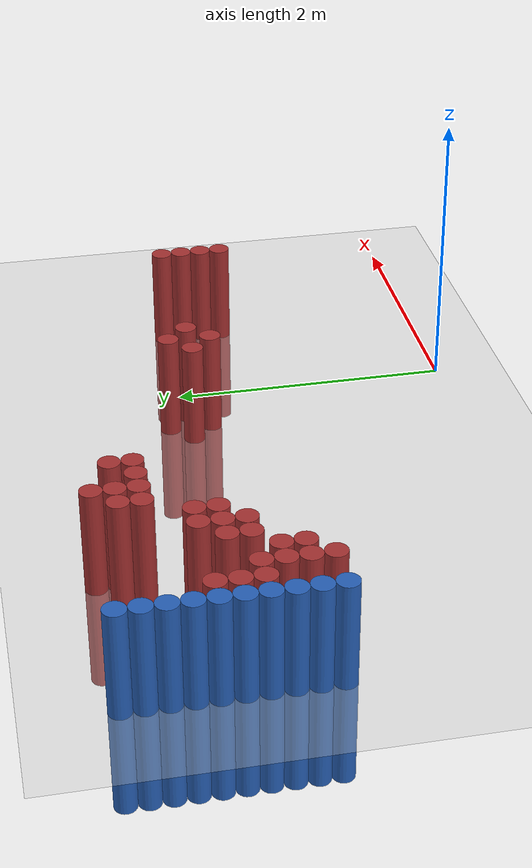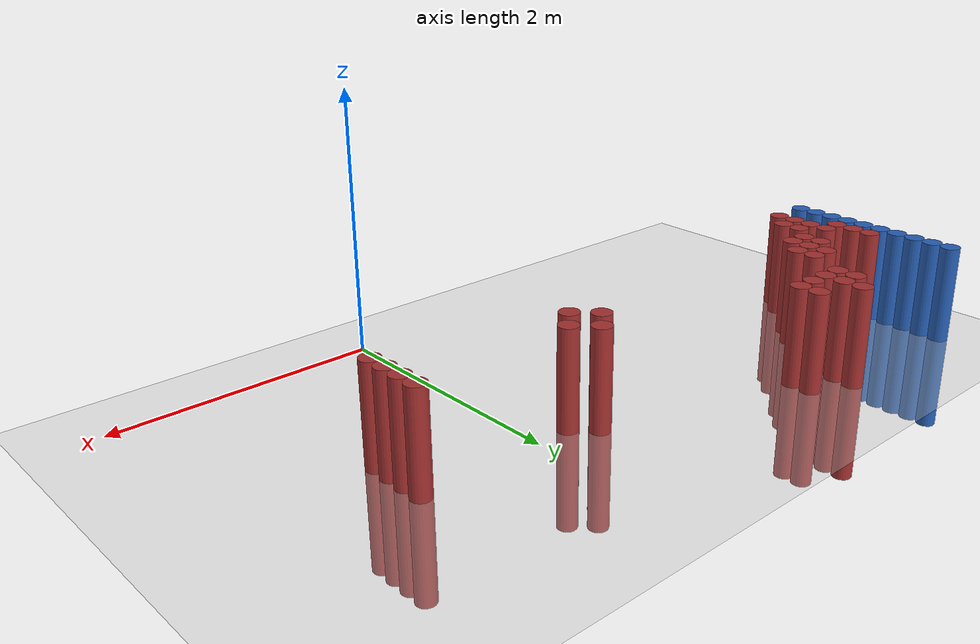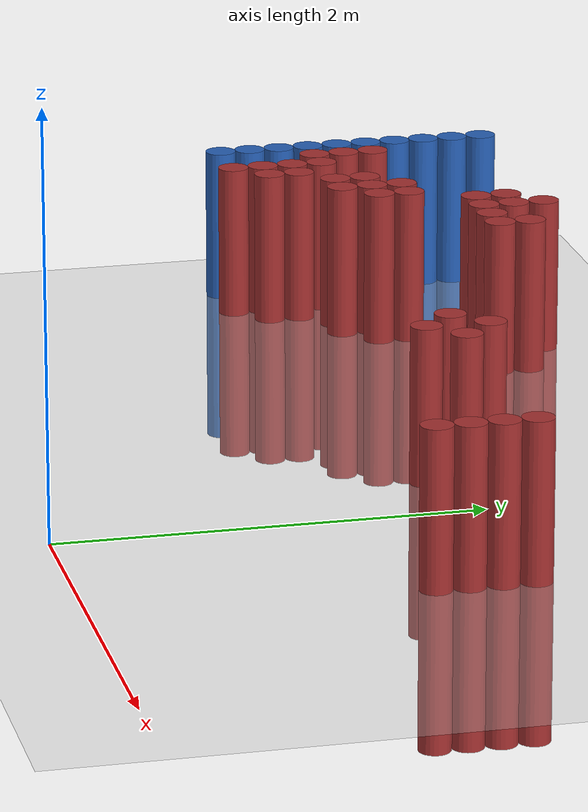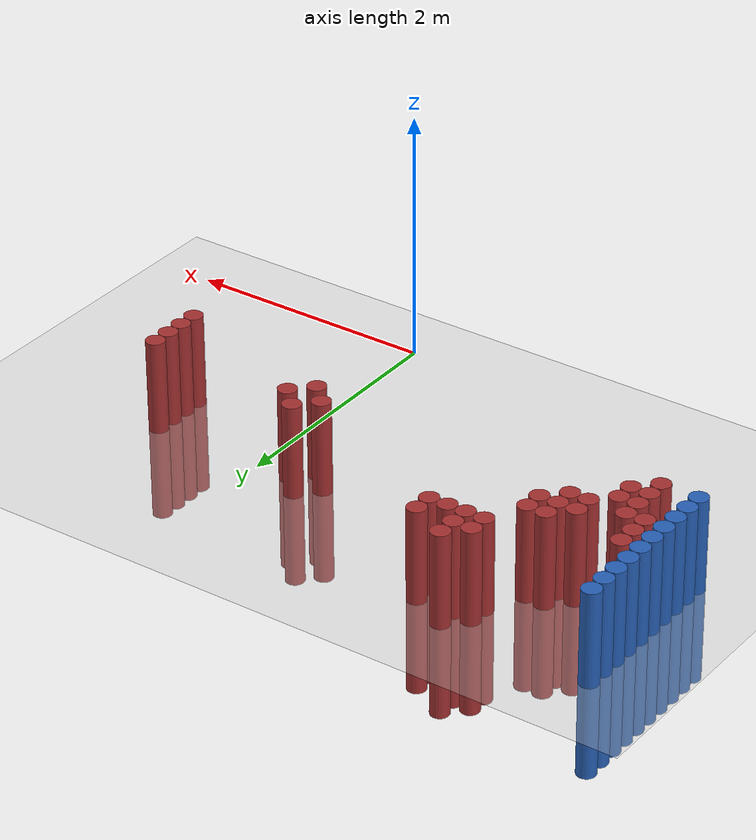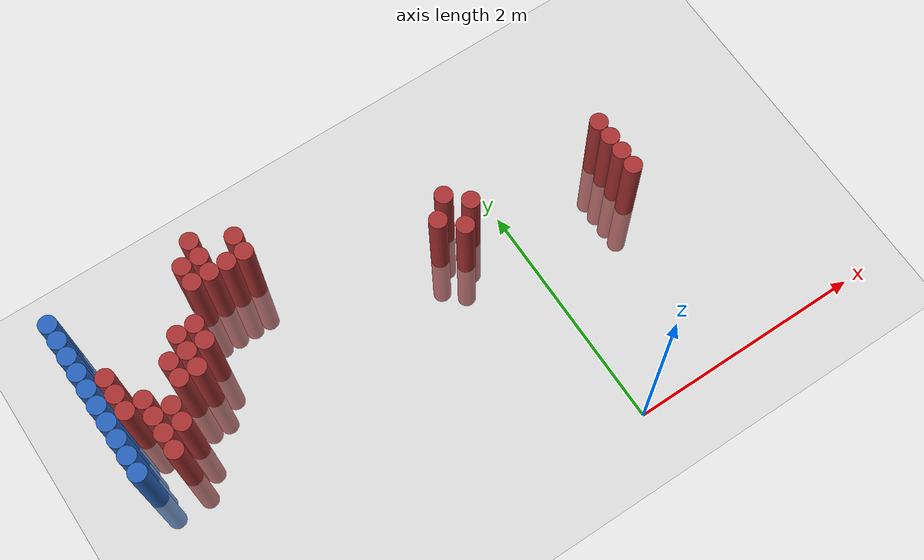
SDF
<sdf version="1.6">
 <world name="default">
  <model name="ground_plane">
   <static>1</static>
   <link name="link">
    <collision name="collision">
     <geometry><plane><normal>0 0 1</normal><size>100 100</size></plane></geometry>
     <surface><friction><ode><mu>100</mu><mu2>50</mu2></ode></friction></surface>
    </collision>
    <visual name="visual">
     <cast_shadows>0</cast_shadows>
     <geometry><plane><normal>0 0 1</normal><size>100 100</size></plane></geometry>
     <material>
      <script><uri>file://media/materials/scripts/gazebo.material</uri><name>Gazebo/Grey</name></script>
     </material>
    </visual>
   </link>
  </model>
  <model name="unit_cylinder_135">
   <static>1</static>
   <pose>-3.425000 1.525000 0.000000 0.000000 0.000000 0.000000</pose>
   <link name="link">
    <inertial>
     <mass>1</mass>
     <inertia><ixx>0.145833</ixx><ixy>0</ixy><ixz>0</ixz><iyy>0.145833</iyy><iyz>0</iyz><izz>0.125</izz></inertia>
    </inertial>
    <collision name="collision">
     <geometry><cylinder><radius>0.075000</radius><length>1.5</length></cylinder></geometry>
    </collision>
    <visual name="visual">
     <geometry><cylinder><radius>0.075000</radius><length>1.5</length></cylinder></geometry>
     <material>
      <ambient>0.152000 0.379000 0.720000 1</ambient>
      <diffuse>0.152000 0.379000 0.720000 1</diffuse>
     </material>
     <material>
      <script><name>Gazebo/Grey</name><uri>file://media/materials/scripts/gazebo.material</uri></script>
     </material>
    </visual>
   </link>
  </model>
  <model name="unit_cylinder_137">
   <static>1</static>
   <pose>-3.425000 1.675000 0.000000 0.000000 0.000000 0.000000</pose>
   <link name="link">
    <inertial>
     <mass>1</mass>
     <inertia><ixx>0.145833</ixx><ixy>0</ixy><ixz>0</ixz><iyy>0.145833</iyy><iyz>0</iyz><izz>0.125</izz></inertia>
    </inertial>
    <collision name="collision">
     <geometry><cylinder><radius>0.075000</radius><length>1.5</length></cylinder></geometry>
    </collision>
    <visual name="visual">
     <geometry><cylinder><radius>0.075000</radius><length>1.5</length></cylinder></geometry>
     <material>
      <ambient>0.152000 0.379000 0.720000 1</ambient>
      <diffuse>0.152000 0.379000 0.720000 1</diffuse>
     </material>
     <material>
      <script><name>Gazebo/Grey</name><uri>file://media/materials/scripts/gazebo.material</uri></script>
     </material>
    </visual>
   </link>
  </model>
  <model name="unit_cylinder_139">
   <static>1</static>
   <pose>-3.425000 1.825000 0.000000 0.000000 0.000000 0.000000</pose>
   <link name="link">
    <inertial>
     <mass>1</mass>
     <inertia><ixx>0.145833</ixx><ixy>0</ixy><ixz>0</ixz><iyy>0.145833</iyy><iyz>0</iyz><izz>0.125</izz></inertia>
    </inertial>
    <collision name="collision">
     <geometry><cylinder><radius>0.075000</radius><length>1.5</length></cylinder></geometry>
    </collision>
    <visual name="visual">
     <geometry><cylinder><radius>0.075000</radius><length>1.5</length></cylinder></geometry>
     <material>
      <ambient>0.152000 0.379000 0.720000 1</ambient>
      <diffuse>0.152000 0.379000 0.720000 1</diffuse>
     </material>
     <material>
      <script><name>Gazebo/Grey</name><uri>file://media/materials/scripts/gazebo.material</uri></script>
     </material>
    </visual>
   </link>
  </model>
  <model name="unit_cylinder_141">
   <static>1</static>
   <pose>-3.425000 1.975000 0.000000 0.000000 0.000000 0.000000</pose>
   <link name="link">
    <inertial>
     <mass>1</mass>
     <inertia><ixx>0.145833</ixx><ixy>0</ixy><ixz>0</ixz><iyy>0.145833</iyy><iyz>0</iyz><izz>0.125</izz></inertia>
    </inertial>
    <collision name="collision">
     <geometry><cylinder><radius>0.075000</radius><length>1.5</length></cylinder></geometry>
    </collision>
    <visual name="visual">
     <geometry><cylinder><radius>0.075000</radius><length>1.5</length></cylinder></geometry>
     <material>
      <ambient>0.152000 0.379000 0.720000 1</ambient>
      <diffuse>0.152000 0.379000 0.720000 1</diffuse>
     </material>
     <material>
      <script><name>Gazebo/Grey</name><uri>file://media/materials/scripts/gazebo.material</uri></script>
     </material>
    </visual>
   </link>
  </model>
  <model name="unit_cylinder_143">
   <static>1</static>
   <pose>-3.425000 2.125000 0.000000 0.000000 0.000000 0.000000</pose>
   <link name="link">
    <inertial>
     <mass>1</mass>
     <inertia><ixx>0.145833</ixx><ixy>0</ixy><ixz>0</ixz><iyy>0.145833</iyy><iyz>0</iyz><izz>0.125</izz></inertia>
    </inertial>
    <collision name="collision">
     <geometry><cylinder><radius>0.075000</radius><length>1.5</length></cylinder></geometry>
    </collision>
    <visual name="visual">
     <geometry><cylinder><radius>0.075000</radius><length>1.5</length></cylinder></geometry>
     <material>
      <ambient>0.152000 0.379000 0.720000 1</ambient>
      <diffuse>0.152000 0.379000 0.720000 1</diffuse>
     </material>
     <material>
      <script><name>Gazebo/Grey</name><uri>file://media/materials/scripts/gazebo.material</uri></script>
     </material>
    </visual>
   </link>
  </model>
  <model name="unit_cylinder_145">
   <static>1</static>
   <pose>-3.425000 2.275000 0.000000 0.000000 0.000000 0.000000</pose>
   <link name="link">
    <inertial>
     <mass>1</mass>
     <inertia><ixx>0.145833</ixx><ixy>0</ixy><ixz>0</ixz><iyy>0.145833</iyy><iyz>0</iyz><izz>0.125</izz></inertia>
    </inertial>
    <collision name="collision">
     <geometry><cylinder><radius>0.075000</radius><length>1.5</length></cylinder></geometry>
    </collision>
    <visual name="visual">
     <geometry><cylinder><radius>0.075000</radius><length>1.5</length></cylinder></geometry>
     <material>
      <ambient>0.152000 0.379000 0.720000 1</ambient>
      <diffuse>0.152000 0.379000 0.720000 1</diffuse>
     </material>
     <material>
      <script><name>Gazebo/Grey</name><uri>file://media/materials/scripts/gazebo.material</uri></script>
     </material>
    </visual>
   </link>
  </model>
  <model name="unit_cylinder_147">
   <static>1</static>
   <pose>-3.425000 2.425000 0.000000 0.000000 0.000000 0.000000</pose>
   <link name="link">
    <inertial>
     <mass>1</mass>
     <inertia><ixx>0.145833</ixx><ixy>0</ixy><ixz>0</ixz><iyy>0.145833</iyy><iyz>0</iyz><izz>0.125</izz></inertia>
    </inertial>
    <collision name="collision">
     <geometry><cylinder><radius>0.075000</radius><length>1.5</length></cylinder></geometry>
    </collision>
    <visual name="visual">
     <geometry><cylinder><radius>0.075000</radius><length>1.5</length></cylinder></geometry>
     <material>
      <ambient>0.152000 0.379000 0.720000 1</ambient>
      <diffuse>0.152000 0.379000 0.720000 1</diffuse>
     </material>
     <material>
      <script><name>Gazebo/Grey</name><uri>file://media/materials/scripts/gazebo.material</uri></script>
     </material>
    </visual>
   </link>
  </model>
  <model name="unit_cylinder_149">
   <static>1</static>
   <pose>-3.425000 2.575000 0.000000 0.000000 0.000000 0.000000</pose>
   <link name="link">
    <inertial>
     <mass>1</mass>
     <inertia><ixx>0.145833</ixx><ixy>0</ixy><ixz>0</ixz><iyy>0.145833</iyy><iyz>0</iyz><izz>0.125</izz></inertia>
    </inertial>
    <collision name="collision">
     <geometry><cylinder><radius>0.075000</radius><length>1.5</length></cylinder></geometry>
    </collision>
    <visual name="visual">
     <geometry><cylinder><radius>0.075000</radius><length>1.5</length></cylinder></geometry>
     <material>
      <ambient>0.152000 0.379000 0.720000 1</ambient>
      <diffuse>0.152000 0.379000 0.720000 1</diffuse>
     </material>
     <material>
      <script><name>Gazebo/Grey</name><uri>file://media/materials/scripts/gazebo.material</uri></script>
     </material>
    </visual>
   </link>
  </model>
  <model name="unit_cylinder_151">
   <static>1</static>
   <pose>-3.425000 2.725000 0.000000 0.000000 0.000000 0.000000</pose>
   <link name="link">
    <inertial>
     <mass>1</mass>
     <inertia><ixx>0.145833</ixx><ixy>0</ixy><ixz>0</ixz><iyy>0.145833</iyy><iyz>0</iyz><izz>0.125</izz></inertia>
    </inertial>
    <collision name="collision">
     <geometry><cylinder><radius>0.075000</radius><length>1.5</length></cylinder></geometry>
    </collision>
    <visual name="visual">
     <geometry><cylinder><radius>0.075000</radius><length>1.5</length></cylinder></geometry>
     <material>
      <ambient>0.152000 0.379000 0.720000 1</ambient>
      <diffuse>0.152000 0.379000 0.720000 1</diffuse>
     </material>
     <material>
      <script><name>Gazebo/Grey</name><uri>file://media/materials/scripts/gazebo.material</uri></script>
     </material>
    </visual>
   </link>
  </model>
  <model name="unit_cylinder_153">
   <static>1</static>
   <pose>-3.425000 2.875000 0.000000 0.000000 0.000000 0.000000</pose>
   <link name="link">
    <inertial>
     <mass>1</mass>
     <inertia><ixx>0.145833</ixx><ixy>0</ixy><ixz>0</ixz><iyy>0.145833</iyy><iyz>0</iyz><izz>0.125</izz></inertia>
    </inertial>
    <collision name="collision">
     <geometry><cylinder><radius>0.075000</radius><length>1.5</length></cylinder></geometry>
    </collision>
    <visual name="visual">
     <geometry><cylinder><radius>0.075000</radius><length>1.5</length></cylinder></geometry>
     <material>
      <ambient>0.152000 0.379000 0.720000 1</ambient>
      <diffuse>0.152000 0.379000 0.720000 1</diffuse>
     </material>
     <material>
      <script><name>Gazebo/Grey</name><uri>file://media/materials/scripts/gazebo.material</uri></script>
     </material>
    </visual>
   </link>
  </model>
  <model name="unit_cylinder_231">
   <static>1</static>
   <pose>-3.425000 1.525000 0.000000 0.000000 0.000000 0.000000</pose>
   <link name="link">
    <inertial>
     <mass>1</mass>
     <inertia><ixx>0.145833</ixx><ixy>0</ixy><ixz>0</ixz><iyy>0.145833</iyy><iyz>0</iyz><izz>0.125</izz></inertia>
    </inertial>
    <collision name="collision">
     <geometry><cylinder><radius>0.075000</radius><length>1.5</length></cylinder></geometry>
    </collision>
    <visual name="visual">
     <geometry><cylinder><radius>0.075000</radius><length>1.5</length></cylinder></geometry>
     <material>
      <ambient>0.152000 0.379000 0.720000 1</ambient>
      <diffuse>0.152000 0.379000 0.720000 1</diffuse>
     </material>
     <material>
      <script><name>Gazebo/Grey</name><uri>file://media/materials/scripts/gazebo.material</uri></script>
     </material>
    </visual>
   </link>
  </model>
  <model name="unit_cylinder_232">
   <static>1</static>
   <pose>-3.425000 1.675000 0.000000 0.000000 0.000000 0.000000</pose>
   <link name="link">
    <inertial>
     <mass>1</mass>
     <inertia><ixx>0.145833</ixx><ixy>0</ixy><ixz>0</ixz><iyy>0.145833</iyy><iyz>0</iyz><izz>0.125</izz></inertia>
    </inertial>
    <collision name="collision">
     <geometry><cylinder><radius>0.075000</radius><length>1.5</length></cylinder></geometry>
    </collision>
    <visual name="visual">
     <geometry><cylinder><radius>0.075000</radius><length>1.5</length></cylinder></geometry>
     <material>
      <ambient>0.152000 0.379000 0.720000 1</ambient>
      <diffuse>0.152000 0.379000 0.720000 1</diffuse>
     </material>
     <material>
      <script><name>Gazebo/Grey</name><uri>file://media/materials/scripts/gazebo.material</uri></script>
     </material>
    </visual>
   </link>
  </model>
  <model name="unit_cylinder_233">
   <static>1</static>
   <pose>-3.425000 1.825000 0.000000 0.000000 0.000000 0.000000</pose>
   <link name="link">
    <inertial>
     <mass>1</mass>
     <inertia><ixx>0.145833</ixx><ixy>0</ixy><ixz>0</ixz><iyy>0.145833</iyy><iyz>0</iyz><izz>0.125</izz></inertia>
    </inertial>
    <collision name="collision">
     <geometry><cylinder><radius>0.075000</radius><length>1.5</length></cylinder></geometry>
    </collision>
    <visual name="visual">
     <geometry><cylinder><radius>0.075000</radius><length>1.5</length></cylinder></geometry>
     <material>
      <ambient>0.152000 0.379000 0.720000 1</ambient>
      <diffuse>0.152000 0.379000 0.720000 1</diffuse>
     </material>
     <material>
      <script><name>Gazebo/Grey</name><uri>file://media/materials/scripts/gazebo.material</uri></script>
     </material>
    </visual>
   </link>
  </model>
  <model name="unit_cylinder_234">
   <static>1</static>
   <pose>-3.425000 1.975000 0.000000 0.000000 0.000000 0.000000</pose>
   <link name="link">
    <inertial>
     <mass>1</mass>
     <inertia><ixx>0.145833</ixx><ixy>0</ixy><ixz>0</ixz><iyy>0.145833</iyy><iyz>0</iyz><izz>0.125</izz></inertia>
    </inertial>
    <collision name="collision">
     <geometry><cylinder><radius>0.075000</radius><length>1.5</length></cylinder></geometry>
    </collision>
    <visual name="visual">
     <geometry><cylinder><radius>0.075000</radius><length>1.5</length></cylinder></geometry>
     <material>
      <ambient>0.152000 0.379000 0.720000 1</ambient>
      <diffuse>0.152000 0.379000 0.720000 1</diffuse>
     </material>
     <material>
      <script><name>Gazebo/Grey</name><uri>file://media/materials/scripts/gazebo.material</uri></script>
     </material>
    </visual>
   </link>
  </model>
  <model name="unit_cylinder_235">
   <static>1</static>
   <pose>-3.425000 2.125000 0.000000 0.000000 0.000000 0.000000</pose>
   <link name="link">
    <inertial>
     <mass>1</mass>
     <inertia><ixx>0.145833</ixx><ixy>0</ixy><ixz>0</ixz><iyy>0.145833</iyy><iyz>0</iyz><izz>0.125</izz></inertia>
    </inertial>
    <collision name="collision">
     <geometry><cylinder><radius>0.075000</radius><length>1.5</length></cylinder></geometry>
    </collision>
    <visual name="visual">
     <geometry><cylinder><radius>0.075000</radius><length>1.5</length></cylinder></geometry>
     <material>
      <ambient>0.152000 0.379000 0.720000 1</ambient>
      <diffuse>0.152000 0.379000 0.720000 1</diffuse>
     </material>
     <material>
      <script><name>Gazebo/Grey</name><uri>file://media/materials/scripts/gazebo.material</uri></script>
     </material>
    </visual>
   </link>
  </model>
  <model name="unit_cylinder_236">
   <static>1</static>
   <pose>-3.425000 2.275000 0.000000 0.000000 0.000000 0.000000</pose>
   <link name="link">
    <inertial>
     <mass>1</mass>
     <inertia><ixx>0.145833</ixx><ixy>0</ixy><ixz>0</ixz><iyy>0.145833</iyy><iyz>0</iyz><izz>0.125</izz></inertia>
    </inertial>
    <collision name="collision">
     <geometry><cylinder><radius>0.075000</radius><length>1.5</length></cylinder></geometry>
    </collision>
    <visual name="visual">
     <geometry><cylinder><radius>0.075000</radius><length>1.5</length></cylinder></geometry>
     <material>
      <ambient>0.152000 0.379000 0.720000 1</ambient>
      <diffuse>0.152000 0.379000 0.720000 1</diffuse>
     </material>
     <material>
      <script><name>Gazebo/Grey</name><uri>file://media/materials/scripts/gazebo.material</uri></script>
     </material>
    </visual>
   </link>
  </model>
  <model name="unit_cylinder_237">
   <static>1</static>
   <pose>-3.425000 2.425000 0.000000 0.000000 0.000000 0.000000</pose>
   <link name="link">
    <inertial>
     <mass>1</mass>
     <inertia><ixx>0.145833</ixx><ixy>0</ixy><ixz>0</ixz><iyy>0.145833</iyy><iyz>0</iyz><izz>0.125</izz></inertia>
    </inertial>
    <collision name="collision">
     <geometry><cylinder><radius>0.075000</radius><length>1.5</length></cylinder></geometry>
    </collision>
    <visual name="visual">
     <geometry><cylinder><radius>0.075000</radius><length>1.5</length></cylinder></geometry>
     <material>
      <ambient>0.152000 0.379000 0.720000 1</ambient>
      <diffuse>0.152000 0.379000 0.720000 1</diffuse>
     </material>
     <material>
      <script><name>Gazebo/Grey</name><uri>file://media/materials/scripts/gazebo.material</uri></script>
     </material>
    </visual>
   </link>
  </model>
  <model name="unit_cylinder_238">
   <static>1</static>
   <pose>-3.425000 2.575000 0.000000 0.000000 0.000000 0.000000</pose>
   <link name="link">
    <inertial>
     <mass>1</mass>
     <inertia><ixx>0.145833</ixx><ixy>0</ixy><ixz>0</ixz><iyy>0.145833</iyy><iyz>0</iyz><izz>0.125</izz></inertia>
    </inertial>
    <collision name="collision">
     <geometry><cylinder><radius>0.075000</radius><length>1.5</length></cylinder></geometry>
    </collision>
    <visual name="visual">
     <geometry><cylinder><radius>0.075000</radius><length>1.5</length></cylinder></geometry>
     <material>
      <ambient>0.152000 0.379000 0.720000 1</ambient>
      <diffuse>0.152000 0.379000 0.720000 1</diffuse>
     </material>
     <material>
      <script><name>Gazebo/Grey</name><uri>file://media/materials/scripts/gazebo.material</uri></script>
     </material>
    </visual>
   </link>
  </model>
  <model name="unit_cylinder_239">
   <static>1</static>
   <pose>-3.425000 2.725000 0.000000 0.000000 0.000000 0.000000</pose>
   <link name="link">
    <inertial>
     <mass>1</mass>
     <inertia><ixx>0.145833</ixx><ixy>0</ixy><ixz>0</ixz><iyy>0.145833</iyy><iyz>0</iyz><izz>0.125</izz></inertia>
    </inertial>
    <collision name="collision">
     <geometry><cylinder><radius>0.075000</radius><length>1.5</length></cylinder></geometry>
    </collision>
    <visual name="visual">
     <geometry><cylinder><radius>0.075000</radius><length>1.5</length></cylinder></geometry>
     <material>
      <ambient>0.152000 0.379000 0.720000 1</ambient>
      <diffuse>0.152000 0.379000 0.720000 1</diffuse>
     </material>
     <material>
      <script><name>Gazebo/Grey</name><uri>file://media/materials/scripts/gazebo.material</uri></script>
     </material>
    </visual>
   </link>
  </model>
  <model name="unit_cylinder_240">
   <static>1</static>
   <pose>-3.425000 2.875000 0.000000 0.000000 0.000000 0.000000</pose>
   <link name="link">
    <inertial>
     <mass>1</mass>
     <inertia><ixx>0.145833</ixx><ixy>0</ixy><ixz>0</ixz><iyy>0.145833</iyy><iyz>0</iyz><izz>0.125</izz></inertia>
    </inertial>
    <collision name="collision">
     <geometry><cylinder><radius>0.075000</radius><length>1.5</length></cylinder></geometry>
    </collision>
    <visual name="visual">
     <geometry><cylinder><radius>0.075000</radius><length>1.5</length></cylinder></geometry>
     <material>
      <ambient>0.152000 0.379000 0.720000 1</ambient>
      <diffuse>0.152000 0.379000 0.720000 1</diffuse>
     </material>
     <material>
      <script><name>Gazebo/Grey</name><uri>file://media/materials/scripts/gazebo.material</uri></script>
     </material>
    </visual>
   </link>
  </model>
  <model name="unit_cylinder_274">
   <static>1</static>
   <pose>-3.275000 1.975000 0.000000 0.000000 0.000000 0.000000</pose>
   <link name="link">
    <inertial>
     <mass>1</mass>
     <inertia><ixx>0.145833</ixx><ixy>0</ixy><ixz>0</ixz><iyy>0.145833</iyy><iyz>0</iyz><izz>0.125</izz></inertia>
    </inertial>
    <collision name="collision">
     <geometry><cylinder><radius>0.075000</radius><length>1.5</length></cylinder></geometry>
    </collision>
    <visual name="visual">
     <geometry><cylinder><radius>0.075000</radius><length>1.5</length></cylinder></geometry>
     <material>
      <ambient>0.648000 0.192000 0.192000 1</ambient>
      <diffuse>0.648000 0.192000 0.192000 1</diffuse>
     </material>
     <material>
      <script><name>Gazebo/Grey</name><uri>file://media/materials/scripts/gazebo.material</uri></script>
     </material>
    </visual>
   </link>
  </model>
  <model name="unit_cylinder_275">
   <static>1</static>
   <pose>-3.275000 2.125000 0.000000 0.000000 0.000000 0.000000</pose>
   <link name="link">
    <inertial>
     <mass>1</mass>
     <inertia><ixx>0.145833</ixx><ixy>0</ixy><ixz>0</ixz><iyy>0.145833</iyy><iyz>0</iyz><izz>0.125</izz></inertia>
    </inertial>
    <collision name="collision">
     <geometry><cylinder><radius>0.075000</radius><length>1.5</length></cylinder></geometry>
    </collision>
    <visual name="visual">
     <geometry><cylinder><radius>0.075000</radius><length>1.5</length></cylinder></geometry>
     <material>
      <ambient>0.648000 0.192000 0.192000 1</ambient>
      <diffuse>0.648000 0.192000 0.192000 1</diffuse>
     </material>
     <material>
      <script><name>Gazebo/Grey</name><uri>file://media/materials/scripts/gazebo.material</uri></script>
     </material>
    </visual>
   </link>
  </model>
  <model name="unit_cylinder_276">
   <static>1</static>
   <pose>-3.275000 2.275000 0.000000 0.000000 0.000000 0.000000</pose>
   <link name="link">
    <inertial>
     <mass>1</mass>
     <inertia><ixx>0.145833</ixx><ixy>0</ixy><ixz>0</ixz><iyy>0.145833</iyy><iyz>0</iyz><izz>0.125</izz></inertia>
    </inertial>
    <collision name="collision">
     <geometry><cylinder><radius>0.075000</radius><length>1.5</length></cylinder></geometry>
    </collision>
    <visual name="visual">
     <geometry><cylinder><radius>0.075000</radius><length>1.5</length></cylinder></geometry>
     <material>
      <ambient>0.648000 0.192000 0.192000 1</ambient>
      <diffuse>0.648000 0.192000 0.192000 1</diffuse>
     </material>
     <material>
      <script><name>Gazebo/Grey</name><uri>file://media/materials/scripts/gazebo.material</uri></script>
     </material>
    </visual>
   </link>
  </model>
  <model name="unit_cylinder_287">
   <static>1</static>
   <pose>-3.125000 1.525000 0.000000 0.000000 0.000000 0.000000</pose>
   <link name="link">
    <inertial>
     <mass>1</mass>
     <inertia><ixx>0.145833</ixx><ixy>0</ixy><ixz>0</ixz><iyy>0.145833</iyy><iyz>0</iyz><izz>0.125</izz></inertia>
    </inertial>
    <collision name="collision">
     <geometry><cylinder><radius>0.075000</radius><length>1.5</length></cylinder></geometry>
    </collision>
    <visual name="visual">
     <geometry><cylinder><radius>0.075000</radius><length>1.5</length></cylinder></geometry>
     <material>
      <ambient>0.648000 0.192000 0.192000 1</ambient>
      <diffuse>0.648000 0.192000 0.192000 1</diffuse>
     </material>
     <material>
      <script><name>Gazebo/Grey</name><uri>file://media/materials/scripts/gazebo.material</uri></script>
     </material>
    </visual>
   </link>
  </model>
  <model name="unit_cylinder_288">
   <static>1</static>
   <pose>-3.125000 1.675000 0.000000 0.000000 0.000000 0.000000</pose>
   <link name="link">
    <inertial>
     <mass>1</mass>
     <inertia><ixx>0.145833</ixx><ixy>0</ixy><ixz>0</ixz><iyy>0.145833</iyy><iyz>0</iyz><izz>0.125</izz></inertia>
    </inertial>
    <collision name="collision">
     <geometry><cylinder><radius>0.075000</radius><length>1.5</length></cylinder></geometry>
    </collision>
    <visual name="visual">
     <geometry><cylinder><radius>0.075000</radius><length>1.5</length></cylinder></geometry>
     <material>
      <ambient>0.648000 0.192000 0.192000 1</ambient>
      <diffuse>0.648000 0.192000 0.192000 1</diffuse>
     </material>
     <material>
      <script><name>Gazebo/Grey</name><uri>file://media/materials/scripts/gazebo.material</uri></script>
     </material>
    </visual>
   </link>
  </model>
  <model name="unit_cylinder_289">
   <static>1</static>
   <pose>-3.125000 1.825000 0.000000 0.000000 0.000000 0.000000</pose>
   <link name="link">
    <inertial>
     <mass>1</mass>
     <inertia><ixx>0.145833</ixx><ixy>0</ixy><ixz>0</ixz><iyy>0.145833</iyy><iyz>0</iyz><izz>0.125</izz></inertia>
    </inertial>
    <collision name="collision">
     <geometry><cylinder><radius>0.075000</radius><length>1.5</length></cylinder></geometry>
    </collision>
    <visual name="visual">
     <geometry><cylinder><radius>0.075000</radius><length>1.5</length></cylinder></geometry>
     <material>
      <ambient>0.648000 0.192000 0.192000 1</ambient>
      <diffuse>0.648000 0.192000 0.192000 1</diffuse>
     </material>
     <material>
      <script><name>Gazebo/Grey</name><uri>file://media/materials/scripts/gazebo.material</uri></script>
     </material>
    </visual>
   </link>
  </model>
  <model name="unit_cylinder_290">
   <static>1</static>
   <pose>-3.125000 1.975000 0.000000 0.000000 0.000000 0.000000</pose>
   <link name="link">
    <inertial>
     <mass>1</mass>
     <inertia><ixx>0.145833</ixx><ixy>0</ixy><ixz>0</ixz><iyy>0.145833</iyy><iyz>0</iyz><izz>0.125</izz></inertia>
    </inertial>
    <collision name="collision">
     <geometry><cylinder><radius>0.075000</radius><length>1.5</length></cylinder></geometry>
    </collision>
    <visual name="visual">
     <geometry><cylinder><radius>0.075000</radius><length>1.5</length></cylinder></geometry>
     <material>
      <ambient>0.648000 0.192000 0.192000 1</ambient>
      <diffuse>0.648000 0.192000 0.192000 1</diffuse>
     </material>
     <material>
      <script><name>Gazebo/Grey</name><uri>file://media/materials/scripts/gazebo.material</uri></script>
     </material>
    </visual>
   </link>
  </model>
  <model name="unit_cylinder_296">
   <static>1</static>
   <pose>-2.975000 1.675000 0.000000 0.000000 0.000000 0.000000</pose>
   <link name="link">
    <inertial>
     <mass>1</mass>
     <inertia><ixx>0.145833</ixx><ixy>0</ixy><ixz>0</ixz><iyy>0.145833</iyy><iyz>0</iyz><izz>0.125</izz></inertia>
    </inertial>
    <collision name="collision">
     <geometry><cylinder><radius>0.075000</radius><length>1.5</length></cylinder></geometry>
    </collision>
    <visual name="visual">
     <geometry><cylinder><radius>0.075000</radius><length>1.5</length></cylinder></geometry>
     <material>
      <ambient>0.648000 0.192000 0.192000 1</ambient>
      <diffuse>0.648000 0.192000 0.192000 1</diffuse>
     </material>
     <material>
      <script><name>Gazebo/Grey</name><uri>file://media/materials/scripts/gazebo.material</uri></script>
     </material>
    </visual>
   </link>
  </model>
  <model name="unit_cylinder_297">
   <static>1</static>
   <pose>-2.975000 1.825000 0.000000 0.000000 0.000000 0.000000</pose>
   <link name="link">
    <inertial>
     <mass>1</mass>
     <inertia><ixx>0.145833</ixx><ixy>0</ixy><ixz>0</ixz><iyy>0.145833</iyy><iyz>0</iyz><izz>0.125</izz></inertia>
    </inertial>
    <collision name="collision">
     <geometry><cylinder><radius>0.075000</radius><length>1.5</length></cylinder></geometry>
    </collision>
    <visual name="visual">
     <geometry><cylinder><radius>0.075000</radius><length>1.5</length></cylinder></geometry>
     <material>
      <ambient>0.648000 0.192000 0.192000 1</ambient>
      <diffuse>0.648000 0.192000 0.192000 1</diffuse>
     </material>
     <material>
      <script><name>Gazebo/Grey</name><uri>file://media/materials/scripts/gazebo.material</uri></script>
     </material>
    </visual>
   </link>
  </model>
  <model name="unit_cylinder_301">
   <static>1</static>
   <pose>-2.825000 1.975000 0.000000 0.000000 0.000000 0.000000</pose>
   <link name="link">
    <inertial>
     <mass>1</mass>
     <inertia><ixx>0.145833</ixx><ixy>0</ixy><ixz>0</ixz><iyy>0.145833</iyy><iyz>0</iyz><izz>0.125</izz></inertia>
    </inertial>
    <collision name="collision">
     <geometry><cylinder><radius>0.075000</radius><length>1.5</length></cylinder></geometry>
    </collision>
    <visual name="visual">
     <geometry><cylinder><radius>0.075000</radius><length>1.5</length></cylinder></geometry>
     <material>
      <ambient>0.648000 0.192000 0.192000 1</ambient>
      <diffuse>0.648000 0.192000 0.192000 1</diffuse>
     </material>
     <material>
      <script><name>Gazebo/Grey</name><uri>file://media/materials/scripts/gazebo.material</uri></script>
     </material>
    </visual>
   </link>
  </model>
  <model name="unit_cylinder_302">
   <static>1</static>
   <pose>-2.825000 2.125000 0.000000 0.000000 0.000000 0.000000</pose>
   <link name="link">
    <inertial>
     <mass>1</mass>
     <inertia><ixx>0.145833</ixx><ixy>0</ixy><ixz>0</ixz><iyy>0.145833</iyy><iyz>0</iyz><izz>0.125</izz></inertia>
    </inertial>
    <collision name="collision">
     <geometry><cylinder><radius>0.075000</radius><length>1.5</length></cylinder></geometry>
    </collision>
    <visual name="visual">
     <geometry><cylinder><radius>0.075000</radius><length>1.5</length></cylinder></geometry>
     <material>
      <ambient>0.648000 0.192000 0.192000 1</ambient>
      <diffuse>0.648000 0.192000 0.192000 1</diffuse>
     </material>
     <material>
      <script><name>Gazebo/Grey</name><uri>file://media/materials/scripts/gazebo.material</uri></script>
     </material>
    </visual>
   </link>
  </model>
  <model name="unit_cylinder_303">
   <static>1</static>
   <pose>-2.675000 1.975000 0.000000 0.000000 0.000000 0.000000</pose>
   <link name="link">
    <inertial>
     <mass>1</mass>
     <inertia><ixx>0.145833</ixx><ixy>0</ixy><ixz>0</ixz><iyy>0.145833</iyy><iyz>0</iyz><izz>0.125</izz></inertia>
    </inertial>
    <collision name="collision">
     <geometry><cylinder><radius>0.075000</radius><length>1.5</length></cylinder></geometry>
    </collision>
    <visual name="visual">
     <geometry><cylinder><radius>0.075000</radius><length>1.5</length></cylinder></geometry>
     <material>
      <ambient>0.648000 0.192000 0.192000 1</ambient>
      <diffuse>0.648000 0.192000 0.192000 1</diffuse>
     </material>
     <material>
      <script><name>Gazebo/Grey</name><uri>file://media/materials/scripts/gazebo.material</uri></script>
     </material>
    </visual>
   </link>
  </model>
  <model name="unit_cylinder_304">
   <static>1</static>
   <pose>-2.675000 2.125000 0.000000 0.000000 0.000000 0.000000</pose>
   <link name="link">
    <inertial>
     <mass>1</mass>
     <inertia><ixx>0.145833</ixx><ixy>0</ixy><ixz>0</ixz><iyy>0.145833</iyy><iyz>0</iyz><izz>0.125</izz></inertia>
    </inertial>
    <collision name="collision">
     <geometry><cylinder><radius>0.075000</radius><length>1.5</length></cylinder></geometry>
    </collision>
    <visual name="visual">
     <geometry><cylinder><radius>0.075000</radius><length>1.5</length></cylinder></geometry>
     <material>
      <ambient>0.648000 0.192000 0.192000 1</ambient>
      <diffuse>0.648000 0.192000 0.192000 1</diffuse>
     </material>
     <material>
      <script><name>Gazebo/Grey</name><uri>file://media/materials/scripts/gazebo.material</uri></script>
     </material>
    </visual>
   </link>
  </model>
  <model name="unit_cylinder_305">
   <static>1</static>
   <pose>-2.675000 2.275000 0.000000 0.000000 0.000000 0.000000</pose>
   <link name="link">
    <inertial>
     <mass>1</mass>
     <inertia><ixx>0.145833</ixx><ixy>0</ixy><ixz>0</ixz><iyy>0.145833</iyy><iyz>0</iyz><izz>0.125</izz></inertia>
    </inertial>
    <collision name="collision">
     <geometry><cylinder><radius>0.075000</radius><length>1.5</length></cylinder></geometry>
    </collision>
    <visual name="visual">
     <geometry><cylinder><radius>0.075000</radius><length>1.5</length></cylinder></geometry>
     <material>
      <ambient>0.648000 0.192000 0.192000 1</ambient>
      <diffuse>0.648000 0.192000 0.192000 1</diffuse>
     </material>
     <material>
      <script><name>Gazebo/Grey</name><uri>file://media/materials/scripts/gazebo.material</uri></script>
     </material>
    </visual>
   </link>
  </model>
  <model name="unit_cylinder_306">
   <static>1</static>
   <pose>-2.525000 2.125000 0.000000 0.000000 0.000000 0.000000</pose>
   <link name="link">
    <inertial>
     <mass>1</mass>
     <inertia><ixx>0.145833</ixx><ixy>0</ixy><ixz>0</ixz><iyy>0.145833</iyy><iyz>0</iyz><izz>0.125</izz></inertia>
    </inertial>
    <collision name="collision">
     <geometry><cylinder><radius>0.075000</radius><length>1.5</length></cylinder></geometry>
    </collision>
    <visual name="visual">
     <geometry><cylinder><radius>0.075000</radius><length>1.5</length></cylinder></geometry>
     <material>
      <ambient>0.648000 0.192000 0.192000 1</ambient>
      <diffuse>0.648000 0.192000 0.192000 1</diffuse>
     </material>
     <material>
      <script><name>Gazebo/Grey</name><uri>file://media/materials/scripts/gazebo.material</uri></script>
     </material>
    </visual>
   </link>
  </model>
  <model name="unit_cylinder_307">
   <static>1</static>
   <pose>-2.525000 2.275000 0.000000 0.000000 0.000000 0.000000</pose>
   <link name="link">
    <inertial>
     <mass>1</mass>
     <inertia><ixx>0.145833</ixx><ixy>0</ixy><ixz>0</ixz><iyy>0.145833</iyy><iyz>0</iyz><izz>0.125</izz></inertia>
    </inertial>
    <collision name="collision">
     <geometry><cylinder><radius>0.075000</radius><length>1.5</length></cylinder></geometry>
    </collision>
    <visual name="visual">
     <geometry><cylinder><radius>0.075000</radius><length>1.5</length></cylinder></geometry>
     <material>
      <ambient>0.648000 0.192000 0.192000 1</ambient>
      <diffuse>0.648000 0.192000 0.192000 1</diffuse>
     </material>
     <material>
      <script><name>Gazebo/Grey</name><uri>file://media/materials/scripts/gazebo.material</uri></script>
     </material>
    </visual>
   </link>
  </model>
  <model name="unit_cylinder_310">
   <static>1</static>
   <pose>-2.375000 2.575000 0.000000 0.000000 0.000000 0.000000</pose>
   <link name="link">
    <inertial>
     <mass>1</mass>
     <inertia><ixx>0.145833</ixx><ixy>0</ixy><ixz>0</ixz><iyy>0.145833</iyy><iyz>0</iyz><izz>0.125</izz></inertia>
    </inertial>
    <collision name="collision">
     <geometry><cylinder><radius>0.075000</radius><length>1.5</length></cylinder></geometry>
    </collision>
    <visual name="visual">
     <geometry><cylinder><radius>0.075000</radius><length>1.5</length></cylinder></geometry>
     <material>
      <ambient>0.648000 0.192000 0.192000 1</ambient>
      <diffuse>0.648000 0.192000 0.192000 1</diffuse>
     </material>
     <material>
      <script><name>Gazebo/Grey</name><uri>file://media/materials/scripts/gazebo.material</uri></script>
     </material>
    </visual>
   </link>
  </model>
  <model name="unit_cylinder_311">
   <static>1</static>
   <pose>-2.375000 2.725000 0.000000 0.000000 0.000000 0.000000</pose>
   <link name="link">
    <inertial>
     <mass>1</mass>
     <inertia><ixx>0.145833</ixx><ixy>0</ixy><ixz>0</ixz><iyy>0.145833</iyy><iyz>0</iyz><izz>0.125</izz></inertia>
    </inertial>
    <collision name="collision">
     <geometry><cylinder><radius>0.075000</radius><length>1.5</length></cylinder></geometry>
    </collision>
    <visual name="visual">
     <geometry><cylinder><radius>0.075000</radius><length>1.5</length></cylinder></geometry>
     <material>
      <ambient>0.648000 0.192000 0.192000 1</ambient>
      <diffuse>0.648000 0.192000 0.192000 1</diffuse>
     </material>
     <material>
      <script><name>Gazebo/Grey</name><uri>file://media/materials/scripts/gazebo.material</uri></script>
     </material>
    </visual>
   </link>
  </model>
  <model name="unit_cylinder_320">
   <static>1</static>
   <pose>-2.225000 2.575000 0.000000 0.000000 0.000000 0.000000</pose>
   <link name="link">
    <inertial>
     <mass>1</mass>
     <inertia><ixx>0.145833</ixx><ixy>0</ixy><ixz>0</ixz><iyy>0.145833</iyy><iyz>0</iyz><izz>0.125</izz></inertia>
    </inertial>
    <collision name="collision">
     <geometry><cylinder><radius>0.075000</radius><length>1.5</length></cylinder></geometry>
    </collision>
    <visual name="visual">
     <geometry><cylinder><radius>0.075000</radius><length>1.5</length></cylinder></geometry>
     <material>
      <ambient>0.648000 0.192000 0.192000 1</ambient>
      <diffuse>0.648000 0.192000 0.192000 1</diffuse>
     </material>
     <material>
      <script><name>Gazebo/Grey</name><uri>file://media/materials/scripts/gazebo.material</uri></script>
     </material>
    </visual>
   </link>
  </model>
  <model name="unit_cylinder_321">
   <static>1</static>
   <pose>-2.225000 2.725000 0.000000 0.000000 0.000000 0.000000</pose>
   <link name="link">
    <inertial>
     <mass>1</mass>
     <inertia><ixx>0.145833</ixx><ixy>0</ixy><ixz>0</ixz><iyy>0.145833</iyy><iyz>0</iyz><izz>0.125</izz></inertia>
    </inertial>
    <collision name="collision">
     <geometry><cylinder><radius>0.075000</radius><length>1.5</length></cylinder></geometry>
    </collision>
    <visual name="visual">
     <geometry><cylinder><radius>0.075000</radius><length>1.5</length></cylinder></geometry>
     <material>
      <ambient>0.648000 0.192000 0.192000 1</ambient>
      <diffuse>0.648000 0.192000 0.192000 1</diffuse>
     </material>
     <material>
      <script><name>Gazebo/Grey</name><uri>file://media/materials/scripts/gazebo.material</uri></script>
     </material>
    </visual>
   </link>
  </model>
  <model name="unit_cylinder_322">
   <static>1</static>
   <pose>-2.225000 2.875000 0.000000 0.000000 0.000000 0.000000</pose>
   <link name="link">
    <inertial>
     <mass>1</mass>
     <inertia><ixx>0.145833</ixx><ixy>0</ixy><ixz>0</ixz><iyy>0.145833</iyy><iyz>0</iyz><izz>0.125</izz></inertia>
    </inertial>
    <collision name="collision">
     <geometry><cylinder><radius>0.075000</radius><length>1.5</length></cylinder></geometry>
    </collision>
    <visual name="visual">
     <geometry><cylinder><radius>0.075000</radius><length>1.5</length></cylinder></geometry>
     <material>
      <ambient>0.648000 0.192000 0.192000 1</ambient>
      <diffuse>0.648000 0.192000 0.192000 1</diffuse>
     </material>
     <material>
      <script><name>Gazebo/Grey</name><uri>file://media/materials/scripts/gazebo.material</uri></script>
     </material>
    </visual>
   </link>
  </model>
  <model name="unit_cylinder_327">
   <static>1</static>
   <pose>-2.075000 2.575000 0.000000 0.000000 0.000000 0.000000</pose>
   <link name="link">
    <inertial>
     <mass>1</mass>
     <inertia><ixx>0.145833</ixx><ixy>0</ixy><ixz>0</ixz><iyy>0.145833</iyy><iyz>0</iyz><izz>0.125</izz></inertia>
    </inertial>
    <collision name="collision">
     <geometry><cylinder><radius>0.075000</radius><length>1.5</length></cylinder></geometry>
    </collision>
    <visual name="visual">
     <geometry><cylinder><radius>0.075000</radius><length>1.5</length></cylinder></geometry>
     <material>
      <ambient>0.648000 0.192000 0.192000 1</ambient>
      <diffuse>0.648000 0.192000 0.192000 1</diffuse>
     </material>
     <material>
      <script><name>Gazebo/Grey</name><uri>file://media/materials/scripts/gazebo.material</uri></script>
     </material>
    </visual>
   </link>
  </model>
  <model name="unit_cylinder_336">
   <static>1</static>
   <pose>-1.925000 2.575000 0.000000 0.000000 0.000000 0.000000</pose>
   <link name="link">
    <inertial>
     <mass>1</mass>
     <inertia><ixx>0.145833</ixx><ixy>0</ixy><ixz>0</ixz><iyy>0.145833</iyy><iyz>0</iyz><izz>0.125</izz></inertia>
    </inertial>
    <collision name="collision">
     <geometry><cylinder><radius>0.075000</radius><length>1.5</length></cylinder></geometry>
    </collision>
    <visual name="visual">
     <geometry><cylinder><radius>0.075000</radius><length>1.5</length></cylinder></geometry>
     <material>
      <ambient>0.648000 0.192000 0.192000 1</ambient>
      <diffuse>0.648000 0.192000 0.192000 1</diffuse>
     </material>
     <material>
      <script><name>Gazebo/Grey</name><uri>file://media/materials/scripts/gazebo.material</uri></script>
     </material>
    </visual>
   </link>
  </model>
  <model name="unit_cylinder_337">
   <static>1</static>
   <pose>-1.925000 2.725000 0.000000 0.000000 0.000000 0.000000</pose>
   <link name="link">
    <inertial>
     <mass>1</mass>
     <inertia><ixx>0.145833</ixx><ixy>0</ixy><ixz>0</ixz><iyy>0.145833</iyy><iyz>0</iyz><izz>0.125</izz></inertia>
    </inertial>
    <collision name="collision">
     <geometry><cylinder><radius>0.075000</radius><length>1.5</length></cylinder></geometry>
    </collision>
    <visual name="visual">
     <geometry><cylinder><radius>0.075000</radius><length>1.5</length></cylinder></geometry>
     <material>
      <ambient>0.648000 0.192000 0.192000 1</ambient>
      <diffuse>0.648000 0.192000 0.192000 1</diffuse>
     </material>
     <material>
      <script><name>Gazebo/Grey</name><uri>file://media/materials/scripts/gazebo.material</uri></script>
     </material>
    </visual>
   </link>
  </model>
  <model name="unit_cylinder_382">
   <static>1</static>
   <pose>-0.575000 1.975000 0.000000 0.000000 0.000000 0.000000</pose>
   <link name="link">
    <inertial>
     <mass>1</mass>
     <inertia><ixx>0.145833</ixx><ixy>0</ixy><ixz>0</ixz><iyy>0.145833</iyy><iyz>0</iyz><izz>0.125</izz></inertia>
    </inertial>
    <collision name="collision">
     <geometry><cylinder><radius>0.075000</radius><length>1.5</length></cylinder></geometry>
    </collision>
    <visual name="visual">
     <geometry><cylinder><radius>0.075000</radius><length>1.5</length></cylinder></geometry>
     <material>
      <ambient>0.648000 0.192000 0.192000 1</ambient>
      <diffuse>0.648000 0.192000 0.192000 1</diffuse>
     </material>
     <material>
      <script><name>Gazebo/Grey</name><uri>file://media/materials/scripts/gazebo.material</uri></script>
     </material>
    </visual>
   </link>
  </model>
  <model name="unit_cylinder_385">
   <static>1</static>
   <pose>-0.425000 1.825000 0.000000 0.000000 0.000000 0.000000</pose>
   <link name="link">
    <inertial>
     <mass>1</mass>
     <inertia><ixx>0.145833</ixx><ixy>0</ixy><ixz>0</ixz><iyy>0.145833</iyy><iyz>0</iyz><izz>0.125</izz></inertia>
    </inertial>
    <collision name="collision">
     <geometry><cylinder><radius>0.075000</radius><length>1.5</length></cylinder></geometry>
    </collision>
    <visual name="visual">
     <geometry><cylinder><radius>0.075000</radius><length>1.5</length></cylinder></geometry>
     <material>
      <ambient>0.648000 0.192000 0.192000 1</ambient>
      <diffuse>0.648000 0.192000 0.192000 1</diffuse>
     </material>
     <material>
      <script><name>Gazebo/Grey</name><uri>file://media/materials/scripts/gazebo.material</uri></script>
     </material>
    </visual>
   </link>
  </model>
  <model name="unit_cylinder_386">
   <static>1</static>
   <pose>-0.425000 2.125000 0.000000 0.000000 0.000000 0.000000</pose>
   <link name="link">
    <inertial>
     <mass>1</mass>
     <inertia><ixx>0.145833</ixx><ixy>0</ixy><ixz>0</ixz><iyy>0.145833</iyy><iyz>0</iyz><izz>0.125</izz></inertia>
    </inertial>
    <collision name="collision">
     <geometry><cylinder><radius>0.075000</radius><length>1.5</length></cylinder></geometry>
    </collision>
    <visual name="visual">
     <geometry><cylinder><radius>0.075000</radius><length>1.5</length></cylinder></geometry>
     <material>
      <ambient>0.648000 0.192000 0.192000 1</ambient>
      <diffuse>0.648000 0.192000 0.192000 1</diffuse>
     </material>
     <material>
      <script><name>Gazebo/Grey</name><uri>file://media/materials/scripts/gazebo.material</uri></script>
     </material>
    </visual>
   </link>
  </model>
  <model name="unit_cylinder_389">
   <static>1</static>
   <pose>-0.275000 1.975000 0.000000 0.000000 0.000000 0.000000</pose>
   <link name="link">
    <inertial>
     <mass>1</mass>
     <inertia><ixx>0.145833</ixx><ixy>0</ixy><ixz>0</ixz><iyy>0.145833</iyy><iyz>0</iyz><izz>0.125</izz></inertia>
    </inertial>
    <collision name="collision">
     <geometry><cylinder><radius>0.075000</radius><length>1.5</length></cylinder></geometry>
    </collision>
    <visual name="visual">
     <geometry><cylinder><radius>0.075000</radius><length>1.5</length></cylinder></geometry>
     <material>
      <ambient>0.648000 0.192000 0.192000 1</ambient>
      <diffuse>0.648000 0.192000 0.192000 1</diffuse>
     </material>
     <material>
      <script><name>Gazebo/Grey</name><uri>file://media/materials/scripts/gazebo.material</uri></script>
     </material>
    </visual>
   </link>
  </model>
  <model name="unit_cylinder_408">
   <static>1</static>
   <pose>0.925000 1.525000 0.000000 0.000000 0.000000 0.000000</pose>
   <link name="link">
    <inertial>
     <mass>1</mass>
     <inertia><ixx>0.145833</ixx><ixy>0</ixy><ixz>0</ixz><iyy>0.145833</iyy><iyz>0</iyz><izz>0.125</izz></inertia>
    </inertial>
    <collision name="collision">
     <geometry><cylinder><radius>0.075000</radius><length>1.5</length></cylinder></geometry>
    </collision>
    <visual name="visual">
     <geometry><cylinder><radius>0.075000</radius><length>1.5</length></cylinder></geometry>
     <material>
      <ambient>0.648000 0.192000 0.192000 1</ambient>
      <diffuse>0.648000 0.192000 0.192000 1</diffuse>
     </material>
     <material>
      <script><name>Gazebo/Grey</name><uri>file://media/materials/scripts/gazebo.material</uri></script>
     </material>
    </visual>
   </link>
  </model>
  <model name="unit_cylinder_409">
   <static>1</static>
   <pose>0.925000 1.675000 0.000000 0.000000 0.000000 0.000000</pose>
   <link name="link">
    <inertial>
     <mass>1</mass>
     <inertia><ixx>0.145833</ixx><ixy>0</ixy><ixz>0</ixz><iyy>0.145833</iyy><iyz>0</iyz><izz>0.125</izz></inertia>
    </inertial>
    <collision name="collision">
     <geometry><cylinder><radius>0.075000</radius><length>1.5</length></cylinder></geometry>
    </collision>
    <visual name="visual">
     <geometry><cylinder><radius>0.075000</radius><length>1.5</length></cylinder></geometry>
     <material>
      <ambient>0.648000 0.192000 0.192000 1</ambient>
      <diffuse>0.648000 0.192000 0.192000 1</diffuse>
     </material>
     <material>
      <script><name>Gazebo/Grey</name><uri>file://media/materials/scripts/gazebo.material</uri></script>
     </material>
    </visual>
   </link>
  </model>
  <model name="unit_cylinder_410">
   <static>1</static>
   <pose>0.925000 1.825000 0.000000 0.000000 0.000000 0.000000</pose>
   <link name="link">
    <inertial>
     <mass>1</mass>
     <inertia><ixx>0.145833</ixx><ixy>0</ixy><ixz>0</ixz><iyy>0.145833</iyy><iyz>0</iyz><izz>0.125</izz></inertia>
    </inertial>
    <collision name="collision">
     <geometry><cylinder><radius>0.075000</radius><length>1.5</length></cylinder></geometry>
    </collision>
    <visual name="visual">
     <geometry><cylinder><radius>0.075000</radius><length>1.5</length></cylinder></geometry>
     <material>
      <ambient>0.648000 0.192000 0.192000 1</ambient>
      <diffuse>0.648000 0.192000 0.192000 1</diffuse>
     </material>
     <material>
      <script><name>Gazebo/Grey</name><uri>file://media/materials/scripts/gazebo.material</uri></script>
     </material>
    </visual>
   </link>
  </model>
  <model name="unit_cylinder_411">
   <static>1</static>
   <pose>0.925000 1.975000 0.000000 0.000000 0.000000 0.000000</pose>
   <link name="link">
    <inertial>
     <mass>1</mass>
     <inertia><ixx>0.145833</ixx><ixy>0</ixy><ixz>0</ixz><iyy>0.145833</iyy><iyz>0</iyz><izz>0.125</izz></inertia>
    </inertial>
    <collision name="collision">
     <geometry><cylinder><radius>0.075000</radius><length>1.5</length></cylinder></geometry>
    </collision>
    <visual name="visual">
     <geometry><cylinder><radius>0.075000</radius><length>1.5</length></cylinder></geometry>
     <material>
      <ambient>0.648000 0.192000 0.192000 1</ambient>
      <diffuse>0.648000 0.192000 0.192000 1</diffuse>
     </material>
     <material>
      <script><name>Gazebo/Grey</name><uri>file://media/materials/scripts/gazebo.material</uri></script>
     </material>
    </visual>
   </link>
  </model>
 </world>
</sdf>
